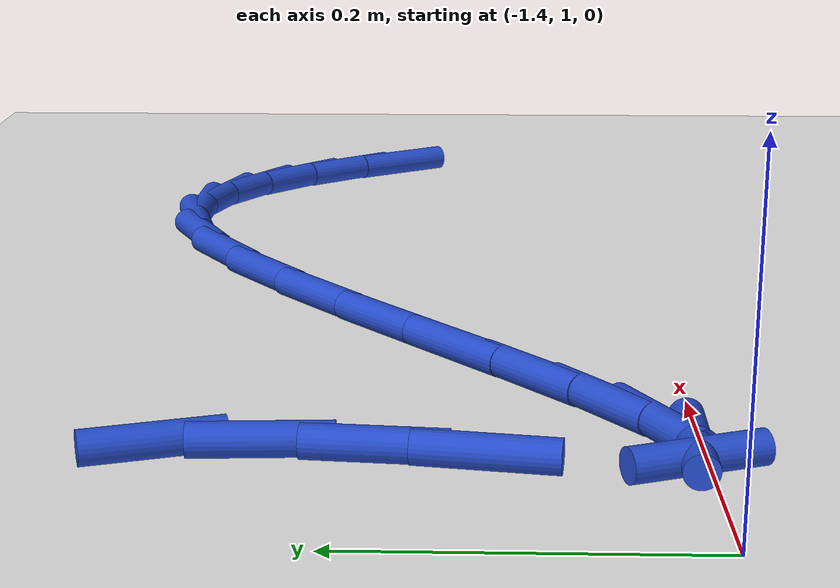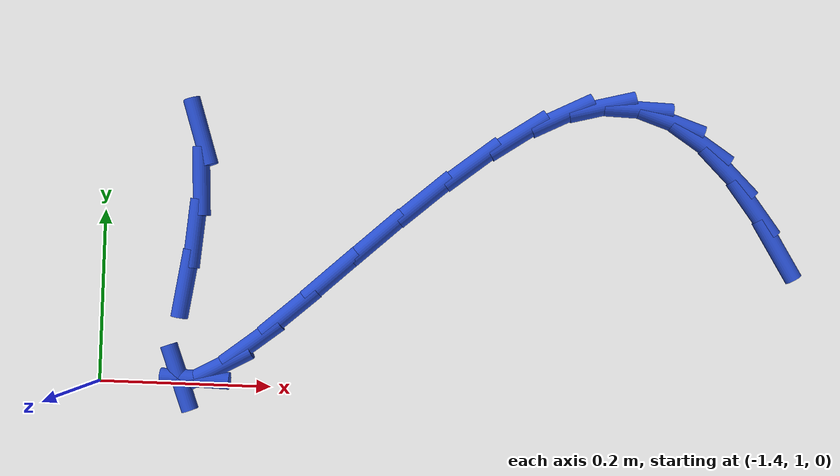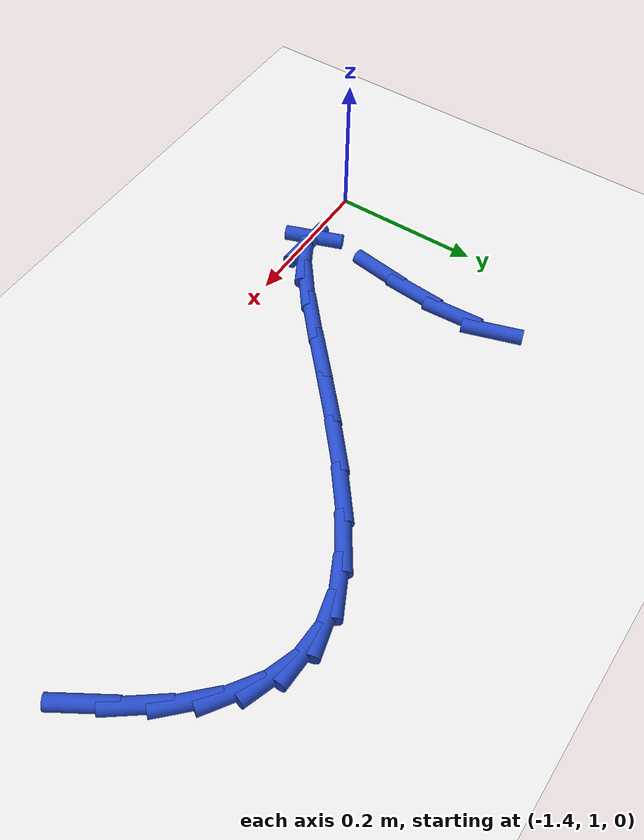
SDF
<sdf version="1.6">
 <world name="default">
  <model name="ground_plane">
   <static>1</static>
   <link name="link">
    <collision name="collision">
     <geometry><plane><normal>0 0 1</normal><size>100 100</size></plane></geometry>
     <surface><friction><ode><mu>100</mu><mu2>50</mu2></ode></friction></surface>
    </collision>
    <visual name="visual">
     <cast_shadows>0</cast_shadows>
     <geometry><plane><normal>0 0 1</normal><size>100 100</size></plane></geometry>
     <material>
      <script><uri>file://media/materials/scripts/gazebo.material</uri><name>Gazebo/WhiteGlow</name></script>
     </material>
    </visual>
   </link>
  </model>
  <model name="line">
   <link name="link_25">
    <pose>-0.618097656440168 1.1821216777848758 0.01 0 1.57 -1.0161309922070074</pose>
    <collision name="collision">
     <geometry><cylinder><radius>0.01</radius><length>0.08</length></cylinder></geometry>
    </collision>
    <visual name="visual">
     <material>
      <script><name>Gazebo/Blue</name><uri>file://media/materials/scripts/gazebo.material</uri></script>
     </material>
     <geometry><cylinder><radius>0.01</radius><length>0.08</length></cylinder></geometry>
    </visual>
   </link>
   <link name="link_26">
    <pose>-0.6470518705887399 1.2288564940374045 0.01 0 1.57 -0.9212167148267709</pose>
    <collision name="collision">
     <geometry><cylinder><radius>0.01</radius><length>0.08</length></cylinder></geometry>
    </collision>
    <visual name="visual">
     <material>
      <script><name>Gazebo/Blue</name><uri>file://media/materials/scripts/gazebo.material</uri></script>
     </material>
     <geometry><cylinder><radius>0.01</radius><length>0.08</length></cylinder></geometry>
    </visual>
   </link>
   <link name="link_27">
    <pose>-0.6776756663168588 1.2691752978818853 0.01 0 1.57 -0.7825406760831308</pose>
    <collision name="collision">
     <geometry><cylinder><radius>0.01</radius><length>0.08</length></cylinder></geometry>
    </collision>
    <visual name="visual">
     <material>
      <script><name>Gazebo/Blue</name><uri>file://media/materials/scripts/gazebo.material</uri></script>
     </material>
     <geometry><cylinder><radius>0.01</radius><length>0.08</length></cylinder></geometry>
    </visual>
   </link>
   <link name="link_28">
    <pose>-0.7104341793343305 1.3017471297594807 0.01 0 1.57 -0.5864670858300862</pose>
    <collision name="collision">
     <geometry><cylinder><radius>0.01</radius><length>0.08</length></cylinder></geometry>
    </collision>
    <visual name="visual">
     <material>
      <script><name>Gazebo/Blue</name><uri>file://media/materials/scripts/gazebo.material</uri></script>
     </material>
     <geometry><cylinder><radius>0.01</radius><length>0.08</length></cylinder></geometry>
    </visual>
   </link>
   <link name="link_29">
    <pose>-0.74579254535096 1.325241030111352 0.01 0 1.57 -0.3282299355028631</pose>
    <collision name="collision">
     <geometry><cylinder><radius>0.01</radius><length>0.08</length></cylinder></geometry>
    </collision>
    <visual name="visual">
     <material>
      <script><name>Gazebo/Blue</name><uri>file://media/materials/scripts/gazebo.material</uri></script>
     </material>
     <geometry><cylinder><radius>0.01</radius><length>0.08</length></cylinder></geometry>
    </visual>
   </link>
   <link name="link_30">
    <pose>-0.7842159000765527 1.3383260393786602 0.01 0 1.57 -0.032052120000812</pose>
    <collision name="collision">
     <geometry><cylinder><radius>0.01</radius><length>0.08</length></cylinder></geometry>
    </collision>
    <visual name="visual">
     <material>
      <script><name>Gazebo/Blue</name><uri>file://media/materials/scripts/gazebo.material</uri></script>
     </material>
     <geometry><cylinder><radius>0.01</radius><length>0.08</length></cylinder></geometry>
    </visual>
   </link>
   <link name="link_31">
    <pose>-0.8261693792209142 1.339671198002567 0.01 0 1.57 0.24980036048068519</pose>
    <collision name="collision">
     <geometry><cylinder><radius>0.01</radius><length>0.08</length></cylinder></geometry>
    </collision>
    <visual name="visual">
     <material>
      <script><name>Gazebo/Blue</name><uri>file://media/materials/scripts/gazebo.material</uri></script>
     </material>
     <geometry><cylinder><radius>0.01</radius><length>0.08</length></cylinder></geometry>
    </visual>
   </link>
   <link name="link_32">
    <pose>-0.8721167716954523 1.3279486730198993 0.01 0 1.57 0.46335138029110495</pose>
    <collision name="collision">
     <geometry><cylinder><radius>0.01</radius><length>0.08</length></cylinder></geometry>
    </collision>
    <visual name="visual">
     <material>
      <script><name>Gazebo/Blue</name><uri>file://media/materials/scripts/gazebo.material</uri></script>
     </material>
     <geometry><cylinder><radius>0.01</radius><length>0.08</length></cylinder></geometry>
    </visual>
   </link>
   <link name="link_33">
    <pose>-0.9220091215972849 1.303020969766644 0.01 0 1.57 0.591791468082233</pose>
    <collision name="collision">
     <geometry><cylinder><radius>0.01</radius><length>0.08</length></cylinder></geometry>
    </collision>
    <visual name="visual">
     <material>
      <script><name>Gazebo/Blue</name><uri>file://media/materials/scripts/gazebo.material</uri></script>
     </material>
     <geometry><cylinder><radius>0.01</radius><length>0.08</length></cylinder></geometry>
    </visual>
   </link>
   <link name="link_34">
    <pose>-0.9745143272222495 1.267729419591458 0.01 0 1.57 0.6688519637819874</pose>
    <collision name="collision">
     <geometry><cylinder><radius>0.01</radius><length>0.08</length></cylinder></geometry>
    </collision>
    <visual name="visual">
     <material>
      <script><name>Gazebo/Blue</name><uri>file://media/materials/scripts/gazebo.material</uri></script>
     </material>
     <geometry><cylinder><radius>0.01</radius><length>0.08</length></cylinder></geometry>
    </visual>
   </link>
   <link name="link_35">
    <pose>-1.0281028301722723 1.2253737500249526 0.01 0 1.57 0.7147721482131322</pose>
    <collision name="collision">
     <geometry><cylinder><radius>0.01</radius><length>0.08</length></cylinder></geometry>
    </collision>
    <visual name="visual">
     <material>
      <script><name>Gazebo/Blue</name><uri>file://media/materials/scripts/gazebo.material</uri></script>
     </material>
     <geometry><cylinder><radius>0.01</radius><length>0.08</length></cylinder></geometry>
    </visual>
   </link>
   <link name="link_36">
    <pose>-1.0812450720492814 1.1792536885977387 0.01 0 1.57 0.7385614153455848</pose>
    <collision name="collision">
     <geometry><cylinder><radius>0.01</radius><length>0.08</length></cylinder></geometry>
    </collision>
    <visual name="visual">
     <material>
      <script><name>Gazebo/Blue</name><uri>file://media/materials/scripts/gazebo.material</uri></script>
     </material>
     <geometry><cylinder><radius>0.01</radius><length>0.08</length></cylinder></geometry>
    </visual>
   </link>
   <link name="link_37">
    <pose>-1.132411494455203 1.1326689628404278 0.01 0 1.57 0.7426351480196461</pose>
    <collision name="collision">
     <geometry><cylinder><radius>0.01</radius><length>0.08</length></cylinder></geometry>
    </collision>
    <visual name="visual">
     <material>
      <script><name>Gazebo/Blue</name><uri>file://media/materials/scripts/gazebo.material</uri></script>
     </material>
     <geometry><cylinder><radius>0.01</radius><length>0.08</length></cylinder></geometry>
    </visual>
   </link>
   <link name="link_38">
    <pose>-1.1800725389919642 1.0889193002836308 0.01 0 1.57 0.7230268346368294</pose>
    <collision name="collision">
     <geometry><cylinder><radius>0.01</radius><length>0.08</length></cylinder></geometry>
    </collision>
    <visual name="visual">
     <material>
      <script><name>Gazebo/Blue</name><uri>file://media/materials/scripts/gazebo.material</uri></script>
     </material>
     <geometry><cylinder><radius>0.01</radius><length>0.08</length></cylinder></geometry>
    </visual>
   </link>
   <link name="link_39">
    <pose>-1.2226986472614922 1.0513044284579591 0.01 0 1.57 0.663327273774626</pose>
    <collision name="collision">
     <geometry><cylinder><radius>0.01</radius><length>0.08</length></cylinder></geometry>
    </collision>
    <visual name="visual">
     <material>
      <script><name>Gazebo/Blue</name><uri>file://media/materials/scripts/gazebo.material</uri></script>
     </material>
     <geometry><cylinder><radius>0.01</radius><length>0.08</length></cylinder></geometry>
    </visual>
   </link>
   <link name="link_40">
    <pose>-1.2587602608657138 1.0231240748940236 0.01 0 1.57 0.5045970312165727</pose>
    <collision name="collision">
     <geometry><cylinder><radius>0.01</radius><length>0.08</length></cylinder></geometry>
    </collision>
    <visual name="visual">
     <material>
      <script><name>Gazebo/Blue</name><uri>file://media/materials/scripts/gazebo.material</uri></script>
     </material>
     <geometry><cylinder><radius>0.01</radius><length>0.08</length></cylinder></geometry>
    </visual>
   </link>
   <link name="link_41">
    <pose>-1.286727821406556 1.0076779671224356 0.01 0 1.57 -0.03203587334514121</pose>
    <collision name="collision">
     <geometry><cylinder><radius>0.01</radius><length>0.08</length></cylinder></geometry>
    </collision>
    <visual name="visual">
     <material>
      <script><name>Gazebo/Blue</name><uri>file://media/materials/scripts/gazebo.material</uri></script>
     </material>
     <geometry><cylinder><radius>0.01</radius><length>0.08</length></cylinder></geometry>
    </visual>
   </link>
   <link name="link_42">
    <pose>-1.305071770485946 1.0082658326738065 0.01 0 1.57 -1.217949614169399</pose>
    <collision name="collision">
     <geometry><cylinder><radius>0.01</radius><length>0.08</length></cylinder></geometry>
    </collision>
    <visual name="visual">
     <material>
      <script><name>Gazebo/Blue</name><uri>file://media/materials/scripts/gazebo.material</uri></script>
     </material>
     <geometry><cylinder><radius>0.01</radius><length>0.08</length></cylinder></geometry>
    </visual>
   </link>
   <link name="link_45">
    <pose>-1.3019562214100033 1.117416338612578 0.01 0 1.57 1.4216280620579</pose>
    <collision name="collision">
     <geometry><cylinder><radius>0.01</radius><length>0.08</length></cylinder></geometry>
    </collision>
    <visual name="visual">
     <material>
      <script><name>Gazebo/Blue</name><uri>file://media/materials/scripts/gazebo.material</uri></script>
     </material>
     <geometry><cylinder><radius>0.01</radius><length>0.08</length></cylinder></geometry>
    </visual>
   </link>
   <link name="link_46">
    <pose>-1.2931315650826976 1.1761359735379382 0.01 0 1.57 1.484906186558458</pose>
    <collision name="collision">
     <geometry><cylinder><radius>0.01</radius><length>0.08</length></cylinder></geometry>
    </collision>
    <visual name="visual">
     <material>
      <script><name>Gazebo/Blue</name><uri>file://media/materials/scripts/gazebo.material</uri></script>
     </material>
     <geometry><cylinder><radius>0.01</radius><length>0.08</length></cylinder></geometry>
    </visual>
   </link>
   <link name="link_47">
    <pose>-1.2879074035701361 1.2368100946921947 0.01 0 1.57 -1.520226292028374</pose>
    <collision name="collision">
     <geometry><cylinder><radius>0.01</radius><length>0.08</length></cylinder></geometry>
    </collision>
    <visual name="visual">
     <material>
      <script><name>Gazebo/Blue</name><uri>file://media/materials/scripts/gazebo.material</uri></script>
     </material>
     <geometry><cylinder><radius>0.01</radius><length>0.08</length></cylinder></geometry>
    </visual>
   </link>
   <link name="link_48">
    <pose>-1.2907962273170686 1.293886598263909 0.01 0 1.57 -1.263776333785228</pose>
    <collision name="collision">
     <geometry><cylinder><radius>0.01</radius><length>0.08</length></cylinder></geometry>
    </collision>
    <visual name="visual">
     <material>
      <script><name>Gazebo/Blue</name><uri>file://media/materials/scripts/gazebo.material</uri></script>
     </material>
     <geometry><cylinder><radius>0.01</radius><length>0.08</length></cylinder></geometry>
    </visual>
   </link>
  </model>
 </world>
</sdf>
